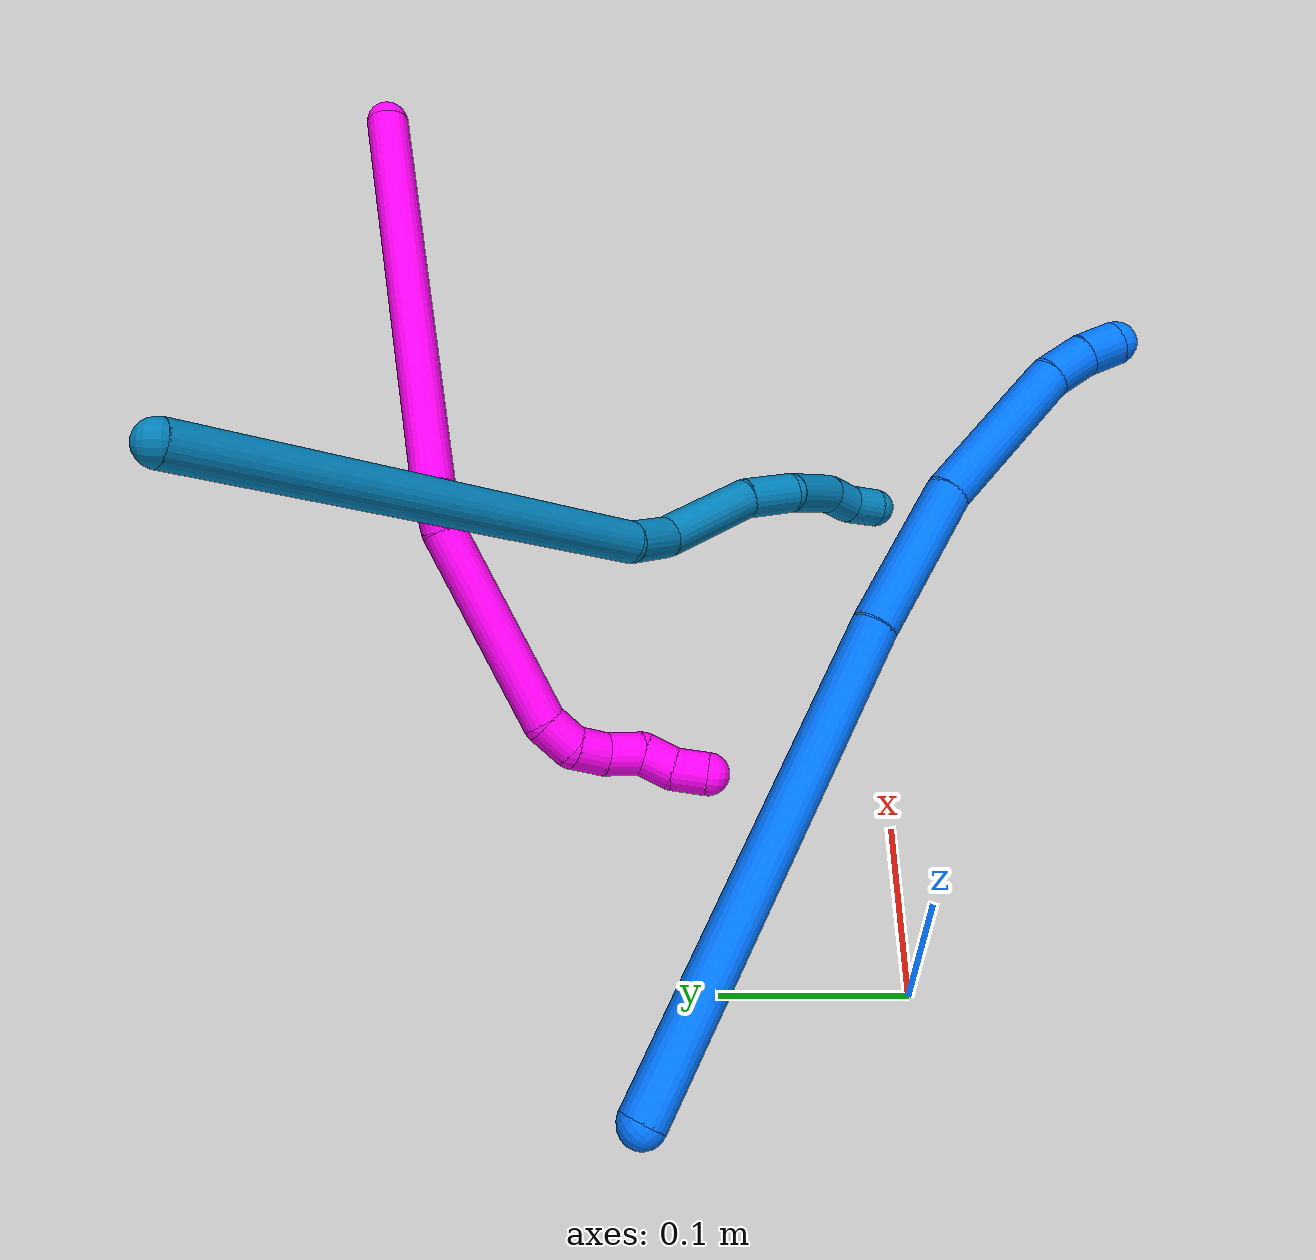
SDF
<sdf version="1.7">
 <world name="default">
  <model name="photoneo_s_sensor">
   <static>1</static>
   <pose>0 0 2 1.57079 1.57079 3.14159</pose>
   <link name="link">
    <inertial><mass>0.1</mass></inertial>
    <sensor name="sensor" type="depth">
     <update_rate>30</update_rate>
     <camera>
      <horizontal_fov>1.22</horizontal_fov>
      <image><width>1920</width><height>1200</height><format>B8G8R8</format></image>
      <clip><near>0.1</near><far>4</far></clip>
      <depth_camera><output>points</output></depth_camera>
     </camera>
     <plugin name="camera_plugin" filename="libgazebo_ros_depth_camera.so">
      <baseline>0.2</baseline>
      <alwaysOn>1</alwaysOn>
      <updateRate>0.0</updateRate>
      <cameraName>camera_ir</cameraName>
      <imageTopicName>/camera/color/image_raw</imageTopicName>
      <cameraInfoTopicName>/camera/color/camera_info</cameraInfoTopicName>
      <depthImageTopicName>/camera/depth/image_raw</depthImageTopicName>
      <depthImageCameraInfoTopicName>/camera/depth/camera_info</depthImageCameraInfoTopicName>
      <pointCloudTopicName>/camera/depth/points</pointCloudTopicName>
      <frameName>fr_optical</frameName>
      <pointCloudCutoff>0.1</pointCloudCutoff>
      <pointCloudCutoffMax>2.0</pointCloudCutoffMax>
      <distortionK1>0</distortionK1>
      <distortionK2>0</distortionK2>
      <distortionK3>0</distortionK3>
      <distortionT1>0</distortionT1>
      <distortionT2>0</distortionT2>
      <CxPrime>0</CxPrime>
      <Cx>0</Cx>
      <Cy>0</Cy>
      <focalLength>0</focalLength>
      <hackBaseline>0</hackBaseline>
     </plugin>
    </sensor>
   </link>
  </model>
  <model name="bin">
   <static>1</static>
   <link name="bottom">
    <collision name="collision-bottom">
     <pose>0 0 -0.01 0 -0 0</pose>
     <geometry><box><size>0.8 0.6 0.02</size></box></geometry>
     <surface>
      <friction><ode><mu>100</mu><mu2>100</mu2></ode></friction>
      <contact><collide_bitmask>65535</collide_bitmask></contact>
     </surface>
    </collision>
   </link>
   <link name="west_wall">
    <collision name="collision-west_wall">
     <pose>-0.41 0 0.1 0 -0 0</pose>
     <geometry><box><size>0.02 0.6 0.2</size></box></geometry>
     <surface>
      <friction><ode><mu>100</mu><mu2>100</mu2></ode></friction>
      <contact><collide_bitmask>65535</collide_bitmask></contact>
     </surface>
    </collision>
   </link>
   <link name="east_wall">
    <collision name="collision-east_wall">
     <pose>0.41 0 0.1 0 -0 0</pose>
     <geometry><box><size>0.02 0.6 0.2</size></box></geometry>
     <surface>
      <friction><ode><mu>100</mu><mu2>100</mu2></ode></friction>
      <contact><collide_bitmask>65535</collide_bitmask></contact>
     </surface>
    </collision>
   </link>
   <link name="south_wall">
    <collision name="collision-south_wall">
     <pose>0 -0.31 0.1 0 -0 0</pose>
     <geometry><box><size>0.8 0.02 0.2</size></box></geometry>
     <surface>
      <friction><ode><mu>100</mu><mu2>100</mu2></ode></friction>
      <contact><collide_bitmask>65535</collide_bitmask></contact>
     </surface>
    </collision>
   </link>
   <link name="north_wall">
    <collision name="collision-north_wall">
     <pose>0 0.31 0.1 0 -0 0</pose>
     <geometry><box><size>0.8 0.02 0.2</size></box></geometry>
     <surface>
      <friction><ode><mu>100</mu><mu2>100</mu2></ode></friction>
      <contact><collide_bitmask>65535</collide_bitmask></contact>
     </surface>
    </collision>
   </link>
  </model>
  <model name="9">
   <static>0</static>
   <link name="9">
    <collision name="collision-cylinder-e_1_1_4">
     <pose>0.073939 -0.028355 -0.116179 2.90221 0.553751 2.34087</pose>
     <geometry><cylinder><radius>0.0125</radius><length>0.281202</length></cylinder></geometry>
     <surface>
      <friction><ode><mu>1.16</mu><mu2>1.16</mu2><slip1>0</slip1><slip2>0</slip2></ode></friction>
      <contact><ode><kp>1e+06</kp><kd>1</kd><max_vel>0</max_vel><min_depth>0.001</min_depth></ode></contact>
     </surface>
    </collision>
    <visual name="visual-cylinder-e_1_1_4">
     <pose>0.073939 -0.028355 -0.116179 2.90221 0.553751 2.34087</pose>
     <geometry><cylinder><radius>0.0125</radius><length>0.281202</length></cylinder></geometry>
     <material><ambient>0 0.490196 0.709804 1</ambient></material>
    </visual>
    <collision name="collision-cylinder-e_2_4_5">
     <pose>0.155662 -0.064796 -0.244338 2.54789 0.493961 1.3787</pose>
     <geometry><cylinder><radius>0.0125</radius><length>0.03283</length></cylinder></geometry>
     <surface>
      <friction><ode><mu>1.16</mu><mu2>1.16</mu2><slip1>0</slip1><slip2>0</slip2></ode></friction>
      <contact><ode><kp>1e+06</kp><kd>1</kd><max_vel>0</max_vel><min_depth>0.001</min_depth></ode></contact>
     </surface>
    </collision>
    <visual name="visual-cylinder-e_2_4_5">
     <pose>0.155662 -0.064796 -0.244338 2.54789 0.493961 1.3787</pose>
     <geometry><cylinder><radius>0.0125</radius><length>0.03283</length></cylinder></geometry>
     <material><ambient>0 0.490196 0.709804 1</ambient></material>
    </visual>
    <collision name="collision-cylinder-e_3_5_6">
     <pose>0.164992 -0.089295 -0.283132 2.59232 0.049187 0.174167</pose>
     <geometry><cylinder><radius>0.0125</radius><length>0.062955</length></cylinder></geometry>
     <surface>
      <friction><ode><mu>1.16</mu><mu2>1.16</mu2><slip1>0</slip1><slip2>0</slip2></ode></friction>
      <contact><ode><kp>1e+06</kp><kd>1</kd><max_vel>0</max_vel><min_depth>0.001</min_depth></ode></contact>
     </surface>
    </collision>
    <visual name="visual-cylinder-e_3_5_6">
     <pose>0.164992 -0.089295 -0.283132 2.59232 0.049187 0.174167</pose>
     <geometry><cylinder><radius>0.0125</radius><length>0.062955</length></cylinder></geometry>
     <material><ambient>0 0.490196 0.709804 1</ambient></material>
    </visual>
    <collision name="collision-cylinder-e_4_6_7">
     <pose>0.169682 -0.110576 -0.325578 2.83972 0.189602 1.11747</pose>
     <geometry><cylinder><radius>0.0125</radius><length>0.033341</length></cylinder></geometry>
     <surface>
      <friction><ode><mu>1.16</mu><mu2>1.16</mu2><slip1>0</slip1><slip2>0</slip2></ode></friction>
      <contact><ode><kp>1e+06</kp><kd>1</kd><max_vel>0</max_vel><min_depth>0.001</min_depth></ode></contact>
     </surface>
    </collision>
    <visual name="visual-cylinder-e_4_6_7">
     <pose>0.169682 -0.110576 -0.325578 2.83972 0.189602 1.11747</pose>
     <geometry><cylinder><radius>0.0125</radius><length>0.033341</length></cylinder></geometry>
     <material><ambient>0 0.490196 0.709804 1</ambient></material>
    </visual>
    <collision name="collision-cylinder-e_5_7_8">
     <pose>0.184897 -0.125279 -0.357242 2.59134 0.570703 1.60926</pose>
     <geometry><cylinder><radius>0.0125</radius><length>0.044699</length></cylinder></geometry>
     <surface>
      <friction><ode><mu>1.16</mu><mu2>1.16</mu2><slip1>0</slip1><slip2>0</slip2></ode></friction>
      <contact><ode><kp>1e+06</kp><kd>1</kd><max_vel>0</max_vel><min_depth>0.001</min_depth></ode></contact>
     </surface>
    </collision>
    <visual name="visual-cylinder-e_5_7_8">
     <pose>0.184897 -0.125279 -0.357242 2.59134 0.570703 1.60926</pose>
     <geometry><cylinder><radius>0.0125</radius><length>0.044699</length></cylinder></geometry>
     <material><ambient>0 0.490196 0.709804 1</ambient></material>
    </visual>
    <collision name="collision-cylinder-e_6_8_9">
     <pose>0.204155 -0.136675 -0.382082 2.96616 0.676555 2.65168</pose>
     <geometry><cylinder><radius>0.0125</radius><length>0.022946</length></cylinder></geometry>
     <surface>
      <friction><ode><mu>1.16</mu><mu2>1.16</mu2><slip1>0</slip1><slip2>0</slip2></ode></friction>
      <contact><ode><kp>1e+06</kp><kd>1</kd><max_vel>0</max_vel><min_depth>0.001</min_depth></ode></contact>
     </surface>
    </collision>
    <visual name="visual-cylinder-e_6_8_9">
     <pose>0.204155 -0.136675 -0.382082 2.96616 0.676555 2.65168</pose>
     <geometry><cylinder><radius>0.0125</radius><length>0.022946</length></cylinder></geometry>
     <material><ambient>0 0.490196 0.709804 1</ambient></material>
    </visual>
    <collision name="collision-cylinder-e_7_9_2">
     <pose>0.215207 -0.139712 -0.401095 2.99796 0.358978 2.38663</pose>
     <geometry><cylinder><radius>0.0125</radius><length>0.022026</length></cylinder></geometry>
     <surface>
      <friction><ode><mu>1.16</mu><mu2>1.16</mu2><slip1>0</slip1><slip2>0</slip2></ode></friction>
      <contact><ode><kp>1e+06</kp><kd>1</kd><max_vel>0</max_vel><min_depth>0.001</min_depth></ode></contact>
     </surface>
    </collision>
    <visual name="visual-cylinder-e_7_9_2">
     <pose>0.215207 -0.139712 -0.401095 2.99796 0.358978 2.38663</pose>
     <geometry><cylinder><radius>0.0125</radius><length>0.022026</length></cylinder></geometry>
     <material><ambient>0 0.490196 0.709804 1</ambient></material>
    </visual>
    <collision name="collision-sphere-2">
     <pose>0.219076 -0.141188 -0.4113 0 -0 0</pose>
     <geometry><sphere><radius>0.0125</radius></sphere></geometry>
     <surface>
      <friction><ode><mu>1.16</mu><mu2>1.16</mu2><slip1>0</slip1><slip2>0</slip2></ode></friction>
      <contact><ode><kp>1e+06</kp><kd>1</kd><max_vel>0</max_vel><min_depth>0.001</min_depth></ode></contact>
     </surface>
    </collision>
    <visual name="visual-sphere-2">
     <pose>0.219076 -0.141188 -0.4113 0 -0 0</pose>
     <geometry><sphere><radius>0.0125</radius></sphere></geometry>
     <material><ambient>0 0.490196 0.709804 1</ambient></material>
    </visual>
    <collision name="collision-sphere-9">
     <pose>0.211338 -0.138236 -0.39089 0 -0 0</pose>
     <geometry><sphere><radius>0.0125</radius></sphere></geometry>
     <surface>
      <friction><ode><mu>1.16</mu><mu2>1.16</mu2><slip1>0</slip1><slip2>0</slip2></ode></friction>
      <contact><ode><kp>1e+06</kp><kd>1</kd><max_vel>0</max_vel><min_depth>0.001</min_depth></ode></contact>
     </surface>
    </collision>
    <visual name="visual-sphere-9">
     <pose>0.211338 -0.138236 -0.39089 0 -0 0</pose>
     <geometry><sphere><radius>0.0125</radius></sphere></geometry>
     <material><ambient>0 0.490196 0.709804 1</ambient></material>
    </visual>
    <collision name="collision-sphere-4">
     <pose>0.147879 -0.056711 -0.232358 0 -0 0</pose>
     <geometry><sphere><radius>0.0125</radius></sphere></geometry>
     <surface>
      <friction><ode><mu>1.16</mu><mu2>1.16</mu2><slip1>0</slip1><slip2>0</slip2></ode></friction>
      <contact><ode><kp>1e+06</kp><kd>1</kd><max_vel>0</max_vel><min_depth>0.001</min_depth></ode></contact>
     </surface>
    </collision>
    <visual name="visual-sphere-4">
     <pose>0.147879 -0.056711 -0.232358 0 -0 0</pose>
     <geometry><sphere><radius>0.0125</radius></sphere></geometry>
     <material><ambient>0 0.490196 0.709804 1</ambient></material>
    </visual>
    <collision name="collision-sphere-1">
     <geometry><sphere><radius>0.0125</radius></sphere></geometry>
     <surface>
      <friction><ode><mu>1.16</mu><mu2>1.16</mu2><slip1>0</slip1><slip2>0</slip2></ode></friction>
      <contact><ode><kp>1e+06</kp><kd>1</kd><max_vel>0</max_vel><min_depth>0.001</min_depth></ode></contact>
     </surface>
    </collision>
    <visual name="visual-sphere-1">
     <geometry><sphere><radius>0.0125</radius></sphere></geometry>
     <material><ambient>0 0.490196 0.709804 1</ambient></material>
    </visual>
    <collision name="collision-sphere-8">
     <pose>0.196971 -0.135113 -0.373273 0 -0 0</pose>
     <geometry><sphere><radius>0.0125</radius></sphere></geometry>
     <surface>
      <friction><ode><mu>1.16</mu><mu2>1.16</mu2><slip1>0</slip1><slip2>0</slip2></ode></friction>
      <contact><ode><kp>1e+06</kp><kd>1</kd><max_vel>0</max_vel><min_depth>0.001</min_depth></ode></contact>
     </surface>
    </collision>
    <visual name="visual-sphere-8">
     <pose>0.196971 -0.135113 -0.373273 0 -0 0</pose>
     <geometry><sphere><radius>0.0125</radius></sphere></geometry>
     <material><ambient>0 0.490196 0.709804 1</ambient></material>
    </visual>
    <collision name="collision-sphere-5">
     <pose>0.163444 -0.072882 -0.256317 0 -0 0</pose>
     <geometry><sphere><radius>0.0125</radius></sphere></geometry>
     <surface>
      <friction><ode><mu>1.16</mu><mu2>1.16</mu2><slip1>0</slip1><slip2>0</slip2></ode></friction>
      <contact><ode><kp>1e+06</kp><kd>1</kd><max_vel>0</max_vel><min_depth>0.001</min_depth></ode></contact>
     </surface>
    </collision>
    <visual name="visual-sphere-5">
     <pose>0.163444 -0.072882 -0.256317 0 -0 0</pose>
     <geometry><sphere><radius>0.0125</radius></sphere></geometry>
     <material><ambient>0 0.490196 0.709804 1</ambient></material>
    </visual>
    <collision name="collision-sphere-6">
     <pose>0.16654 -0.105709 -0.309947 0 -0 0</pose>
     <geometry><sphere><radius>0.0125</radius></sphere></geometry>
     <surface>
      <friction><ode><mu>1.16</mu><mu2>1.16</mu2><slip1>0</slip1><slip2>0</slip2></ode></friction>
      <contact><ode><kp>1e+06</kp><kd>1</kd><max_vel>0</max_vel><min_depth>0.001</min_depth></ode></contact>
     </surface>
    </collision>
    <visual name="visual-sphere-6">
     <pose>0.16654 -0.105709 -0.309947 0 -0 0</pose>
     <geometry><sphere><radius>0.0125</radius></sphere></geometry>
     <material><ambient>0 0.490196 0.709804 1</ambient></material>
    </visual>
    <collision name="collision-sphere-7">
     <pose>0.172823 -0.115444 -0.34121 0 -0 0</pose>
     <geometry><sphere><radius>0.0125</radius></sphere></geometry>
     <surface>
      <friction><ode><mu>1.16</mu><mu2>1.16</mu2><slip1>0</slip1><slip2>0</slip2></ode></friction>
      <contact><ode><kp>1e+06</kp><kd>1</kd><max_vel>0</max_vel><min_depth>0.001</min_depth></ode></contact>
     </surface>
    </collision>
    <visual name="visual-sphere-7">
     <pose>0.172823 -0.115444 -0.34121 0 -0 0</pose>
     <geometry><sphere><radius>0.0125</radius></sphere></geometry>
     <material><ambient>0 0.490196 0.709804 1</ambient></material>
    </visual>
    <inertial>
     <pose>0.119273 -0.062445 -0.205883 0 -0 0</pose>
     <mass>0.5</mass>
     <inertia>
      <ixx>9.5e-05</ixx>
      <ixy>0</ixy>
      <ixz>0</ixz>
      <iyy>0.002561</iyy>
      <iyz>0</iyz>
      <izz>-0.000627</izz>
     </inertia>
    </inertial>
   </link>
   <pose>0.145454 0.358777 0.261483 -0.600686 1.45172 1.07958</pose>
  </model>
  <model name="10">
   <static>0</static>
   <link name="10">
    <collision name="collision-cylinder-e_1_1_4">
     <pose>-0.043579 0.041507 -0.107413 -2.77285 -0.361788 1.55132</pose>
     <geometry><cylinder><radius>0.0125</radius><length>0.246249</length></cylinder></geometry>
     <surface>
      <friction><ode><mu>1.16</mu><mu2>1.16</mu2><slip1>0</slip1><slip2>0</slip2></ode></friction>
      <contact><ode><kp>1e+06</kp><kd>1</kd><max_vel>0</max_vel><min_depth>0.001</min_depth></ode></contact>
     </surface>
    </collision>
    <visual name="visual-cylinder-e_1_1_4">
     <pose>-0.043579 0.041507 -0.107413 -2.77285 -0.361788 1.55132</pose>
     <geometry><cylinder><radius>0.0125</radius><length>0.246249</length></cylinder></geometry>
     <material><ambient>1 0 0.964706 1</ambient></material>
    </visual>
    <collision name="collision-cylinder-e_2_4_5">
     <pose>-0.091904 0.082434 -0.226689 3.0928 -0.380127 -2.88927</pose>
     <geometry><cylinder><radius>0.0125</radius><length>0.025578</length></cylinder></geometry>
     <surface>
      <friction><ode><mu>1.16</mu><mu2>1.16</mu2><slip1>0</slip1><slip2>0</slip2></ode></friction>
      <contact><ode><kp>1e+06</kp><kd>1</kd><max_vel>0</max_vel><min_depth>0.001</min_depth></ode></contact>
     </surface>
    </collision>
    <visual name="visual-cylinder-e_2_4_5">
     <pose>-0.091904 0.082434 -0.226689 3.0928 -0.380127 -2.88927</pose>
     <geometry><cylinder><radius>0.0125</radius><length>0.025578</length></cylinder></geometry>
     <material><ambient>1 0 0.964706 1</ambient></material>
    </visual>
    <collision name="collision-cylinder-e_3_5_6">
     <pose>-0.13348 0.079789 -0.287341 3.09927 -0.646186 -3.01534</pose>
     <geometry><cylinder><radius>0.0125</radius><length>0.122331</length></cylinder></geometry>
     <surface>
      <friction><ode><mu>1.16</mu><mu2>1.16</mu2><slip1>0</slip1><slip2>0</slip2></ode></friction>
      <contact><ode><kp>1e+06</kp><kd>1</kd><max_vel>0</max_vel><min_depth>0.001</min_depth></ode></contact>
     </surface>
    </collision>
    <visual name="visual-cylinder-e_3_5_6">
     <pose>-0.13348 0.079789 -0.287341 3.09927 -0.646186 -3.01534</pose>
     <geometry><cylinder><radius>0.0125</radius><length>0.122331</length></cylinder></geometry>
     <material><ambient>1 0 0.964706 1</ambient></material>
    </visual>
    <collision name="collision-cylinder-e_4_6_7">
     <pose>-0.178981 0.075143 -0.34213 2.73549 -0.925232 -2.35854</pose>
     <geometry><cylinder><radius>0.0125</radius><length>0.02171</length></cylinder></geometry>
     <surface>
      <friction><ode><mu>1.16</mu><mu2>1.16</mu2><slip1>0</slip1><slip2>0</slip2></ode></friction>
      <contact><ode><kp>1e+06</kp><kd>1</kd><max_vel>0</max_vel><min_depth>0.001</min_depth></ode></contact>
     </surface>
    </collision>
    <visual name="visual-cylinder-e_4_6_7">
     <pose>-0.178981 0.075143 -0.34213 2.73549 -0.925232 -2.35854</pose>
     <geometry><cylinder><radius>0.0125</radius><length>0.02171</length></cylinder></geometry>
     <material><ambient>1 0 0.964706 1</ambient></material>
    </visual>
    <collision name="collision-cylinder-e_5_7_8">
     <pose>-0.19643 0.067021 -0.349563 1.82391 -0.992957 -1.22104</pose>
     <geometry><cylinder><radius>0.0125</radius><length>0.02096</length></cylinder></geometry>
     <surface>
      <friction><ode><mu>1.16</mu><mu2>1.16</mu2><slip1>0</slip1><slip2>0</slip2></ode></friction>
      <contact><ode><kp>1e+06</kp><kd>1</kd><max_vel>0</max_vel><min_depth>0.001</min_depth></ode></contact>
     </surface>
    </collision>
    <visual name="visual-cylinder-e_5_7_8">
     <pose>-0.19643 0.067021 -0.349563 1.82391 -0.992957 -1.22104</pose>
     <geometry><cylinder><radius>0.0125</radius><length>0.02096</length></cylinder></geometry>
     <material><ambient>1 0 0.964706 1</ambient></material>
    </visual>
    <collision name="collision-cylinder-e_6_8_9">
     <pose>-0.215439 0.057568 -0.34955 1.2166 -1.1838 -0.875755</pose>
     <geometry><cylinder><radius>0.0125</radius><length>0.022096</length></cylinder></geometry>
     <surface>
      <friction><ode><mu>1.16</mu><mu2>1.16</mu2><slip1>0</slip1><slip2>0</slip2></ode></friction>
      <contact><ode><kp>1e+06</kp><kd>1</kd><max_vel>0</max_vel><min_depth>0.001</min_depth></ode></contact>
     </surface>
    </collision>
    <visual name="visual-cylinder-e_6_8_9">
     <pose>-0.215439 0.057568 -0.34955 1.2166 -1.1838 -0.875755</pose>
     <geometry><cylinder><radius>0.0125</radius><length>0.022096</length></cylinder></geometry>
     <material><ambient>1 0 0.964706 1</ambient></material>
    </visual>
    <collision name="collision-cylinder-e_7_9_10">
     <pose>-0.235344 0.052832 -0.351111 2.8736 -1.25895 -2.77555</pose>
     <geometry><cylinder><radius>0.0125</radius><length>0.020328</length></cylinder></geometry>
     <surface>
      <friction><ode><mu>1.16</mu><mu2>1.16</mu2><slip1>0</slip1><slip2>0</slip2></ode></friction>
      <contact><ode><kp>1e+06</kp><kd>1</kd><max_vel>0</max_vel><min_depth>0.001</min_depth></ode></contact>
     </surface>
    </collision>
    <visual name="visual-cylinder-e_7_9_10">
     <pose>-0.235344 0.052832 -0.351111 2.8736 -1.25895 -2.77555</pose>
     <geometry><cylinder><radius>0.0125</radius><length>0.020328</length></cylinder></geometry>
     <material><ambient>1 0 0.964706 1</ambient></material>
    </visual>
    <collision name="collision-cylinder-e_8_10_2">
     <pose>-0.255384 0.051876 -0.353737 0.328756 -1.53189 -0.316421</pose>
     <geometry><cylinder><radius>0.0125</radius><length>0.020749</length></cylinder></geometry>
     <surface>
      <friction><ode><mu>1.16</mu><mu2>1.16</mu2><slip1>0</slip1><slip2>0</slip2></ode></friction>
      <contact><ode><kp>1e+06</kp><kd>1</kd><max_vel>0</max_vel><min_depth>0.001</min_depth></ode></contact>
     </surface>
    </collision>
    <visual name="visual-cylinder-e_8_10_2">
     <pose>-0.255384 0.051876 -0.353737 0.328756 -1.53189 -0.316421</pose>
     <geometry><cylinder><radius>0.0125</radius><length>0.020749</length></cylinder></geometry>
     <material><ambient>1 0 0.964706 1</ambient></material>
    </visual>
    <collision name="collision-sphere-2">
     <pose>-0.265751 0.051745 -0.353355 0 -0 0</pose>
     <geometry><sphere><radius>0.0125</radius></sphere></geometry>
     <surface>
      <friction><ode><mu>1.16</mu><mu2>1.16</mu2><slip1>0</slip1><slip2>0</slip2></ode></friction>
      <contact><ode><kp>1e+06</kp><kd>1</kd><max_vel>0</max_vel><min_depth>0.001</min_depth></ode></contact>
     </surface>
    </collision>
    <visual name="visual-sphere-2">
     <pose>-0.265751 0.051745 -0.353355 0 -0 0</pose>
     <geometry><sphere><radius>0.0125</radius></sphere></geometry>
     <material><ambient>1 0 0.964706 1</ambient></material>
    </visual>
    <collision name="collision-sphere-10">
     <pose>-0.245018 0.052006 -0.354119 0 -0 0</pose>
     <geometry><sphere><radius>0.0125</radius></sphere></geometry>
     <surface>
      <friction><ode><mu>1.16</mu><mu2>1.16</mu2><slip1>0</slip1><slip2>0</slip2></ode></friction>
      <contact><ode><kp>1e+06</kp><kd>1</kd><max_vel>0</max_vel><min_depth>0.001</min_depth></ode></contact>
     </surface>
    </collision>
    <visual name="visual-sphere-10">
     <pose>-0.245018 0.052006 -0.354119 0 -0 0</pose>
     <geometry><sphere><radius>0.0125</radius></sphere></geometry>
     <material><ambient>1 0 0.964706 1</ambient></material>
    </visual>
    <collision name="collision-sphere-9">
     <pose>-0.22567 0.053658 -0.348104 0 -0 0</pose>
     <geometry><sphere><radius>0.0125</radius></sphere></geometry>
     <surface>
      <friction><ode><mu>1.16</mu><mu2>1.16</mu2><slip1>0</slip1><slip2>0</slip2></ode></friction>
      <contact><ode><kp>1e+06</kp><kd>1</kd><max_vel>0</max_vel><min_depth>0.001</min_depth></ode></contact>
     </surface>
    </collision>
    <visual name="visual-sphere-9">
     <pose>-0.22567 0.053658 -0.348104 0 -0 0</pose>
     <geometry><sphere><radius>0.0125</radius></sphere></geometry>
     <material><ambient>1 0 0.964706 1</ambient></material>
    </visual>
    <collision name="collision-sphere-4">
     <pose>-0.087159 0.083013 -0.214827 0 -0 0</pose>
     <geometry><sphere><radius>0.0125</radius></sphere></geometry>
     <surface>
      <friction><ode><mu>1.16</mu><mu2>1.16</mu2><slip1>0</slip1><slip2>0</slip2></ode></friction>
      <contact><ode><kp>1e+06</kp><kd>1</kd><max_vel>0</max_vel><min_depth>0.001</min_depth></ode></contact>
     </surface>
    </collision>
    <visual name="visual-sphere-4">
     <pose>-0.087159 0.083013 -0.214827 0 -0 0</pose>
     <geometry><sphere><radius>0.0125</radius></sphere></geometry>
     <material><ambient>1 0 0.964706 1</ambient></material>
    </visual>
    <collision name="collision-sphere-1">
     <geometry><sphere><radius>0.0125</radius></sphere></geometry>
     <surface>
      <friction><ode><mu>1.16</mu><mu2>1.16</mu2><slip1>0</slip1><slip2>0</slip2></ode></friction>
      <contact><ode><kp>1e+06</kp><kd>1</kd><max_vel>0</max_vel><min_depth>0.001</min_depth></ode></contact>
     </surface>
    </collision>
    <visual name="visual-sphere-1">
     <geometry><sphere><radius>0.0125</radius></sphere></geometry>
     <material><ambient>1 0 0.964706 1</ambient></material>
    </visual>
    <collision name="collision-sphere-8">
     <pose>-0.205208 0.061479 -0.350997 0 -0 0</pose>
     <geometry><sphere><radius>0.0125</radius></sphere></geometry>
     <surface>
      <friction><ode><mu>1.16</mu><mu2>1.16</mu2><slip1>0</slip1><slip2>0</slip2></ode></friction>
      <contact><ode><kp>1e+06</kp><kd>1</kd><max_vel>0</max_vel><min_depth>0.001</min_depth></ode></contact>
     </surface>
    </collision>
    <visual name="visual-sphere-8">
     <pose>-0.205208 0.061479 -0.350997 0 -0 0</pose>
     <geometry><sphere><radius>0.0125</radius></sphere></geometry>
     <material><ambient>1 0 0.964706 1</ambient></material>
    </visual>
    <collision name="collision-sphere-5">
     <pose>-0.096649 0.081855 -0.238551 0 -0 0</pose>
     <geometry><sphere><radius>0.0125</radius></sphere></geometry>
     <surface>
      <friction><ode><mu>1.16</mu><mu2>1.16</mu2><slip1>0</slip1><slip2>0</slip2></ode></friction>
      <contact><ode><kp>1e+06</kp><kd>1</kd><max_vel>0</max_vel><min_depth>0.001</min_depth></ode></contact>
     </surface>
    </collision>
    <visual name="visual-sphere-5">
     <pose>-0.096649 0.081855 -0.238551 0 -0 0</pose>
     <geometry><sphere><radius>0.0125</radius></sphere></geometry>
     <material><ambient>1 0 0.964706 1</ambient></material>
    </visual>
    <collision name="collision-sphere-6">
     <pose>-0.17031 0.077723 -0.33613 0 -0 0</pose>
     <geometry><sphere><radius>0.0125</radius></sphere></geometry>
     <surface>
      <friction><ode><mu>1.16</mu><mu2>1.16</mu2><slip1>0</slip1><slip2>0</slip2></ode></friction>
      <contact><ode><kp>1e+06</kp><kd>1</kd><max_vel>0</max_vel><min_depth>0.001</min_depth></ode></contact>
     </surface>
    </collision>
    <visual name="visual-sphere-6">
     <pose>-0.17031 0.077723 -0.33613 0 -0 0</pose>
     <geometry><sphere><radius>0.0125</radius></sphere></geometry>
     <material><ambient>1 0 0.964706 1</ambient></material>
    </visual>
    <collision name="collision-sphere-7">
     <pose>-0.187651 0.072563 -0.34813 0 -0 0</pose>
     <geometry><sphere><radius>0.0125</radius></sphere></geometry>
     <surface>
      <friction><ode><mu>1.16</mu><mu2>1.16</mu2><slip1>0</slip1><slip2>0</slip2></ode></friction>
      <contact><ode><kp>1e+06</kp><kd>1</kd><max_vel>0</max_vel><min_depth>0.001</min_depth></ode></contact>
     </surface>
    </collision>
    <visual name="visual-sphere-7">
     <pose>-0.187651 0.072563 -0.34813 0 -0 0</pose>
     <geometry><sphere><radius>0.0125</radius></sphere></geometry>
     <material><ambient>1 0 0.964706 1</ambient></material>
    </visual>
    <inertial>
     <pose>-0.104514 0.057097 -0.208709 0 -0 0</pose>
     <mass>0.5</mass>
     <inertia>
      <ixx>0.001029</ixx>
      <ixy>0</ixy>
      <ixz>0</ixz>
      <iyy>0.001461</iyy>
      <iyz>0</iyz>
      <izz>0.000104</izz>
     </inertia>
    </inertial>
   </link>
   <pose>0.458457 0.303589 0.237351 0.798773 -0.05288 1.39179</pose>
  </model>
  <model name="14">
   <static>0</static>
   <link name="14">
    <collision name="collision-cylinder-e_1_1_4">
     <pose>0.107701 -0.051622 -0.059042 2.42314 0.941397 1.87006</pose>
     <geometry><cylinder><radius>0.0125</radius><length>0.266461</length></cylinder></geometry>
     <surface>
      <friction><ode><mu>1.16</mu><mu2>1.16</mu2><slip1>0</slip1><slip2>0</slip2></ode></friction>
      <contact><ode><kp>1e+06</kp><kd>1</kd><max_vel>0</max_vel><min_depth>0.001</min_depth></ode></contact>
     </surface>
    </collision>
    <visual name="visual-cylinder-e_1_1_4">
     <pose>0.107701 -0.051622 -0.059042 2.42314 0.941397 1.87006</pose>
     <geometry><cylinder><radius>0.0125</radius><length>0.266461</length></cylinder></geometry>
     <material><ambient>0 0.462745 1 1</ambient></material>
    </visual>
    <collision name="collision-cylinder-e_2_4_5">
     <pose>0.250023 -0.124439 -0.136453 2.28487 0.889923 1.6141</pose>
     <geometry><cylinder><radius>0.0125</radius><length>0.08911</length></cylinder></geometry>
     <surface>
      <friction><ode><mu>1.16</mu><mu2>1.16</mu2><slip1>0</slip1><slip2>0</slip2></ode></friction>
      <contact><ode><kp>1e+06</kp><kd>1</kd><max_vel>0</max_vel><min_depth>0.001</min_depth></ode></contact>
     </surface>
    </collision>
    <visual name="visual-cylinder-e_2_4_5">
     <pose>0.250023 -0.124439 -0.136453 2.28487 0.889923 1.6141</pose>
     <geometry><cylinder><radius>0.0125</radius><length>0.08911</length></cylinder></geometry>
     <material><ambient>0 0.462745 1 1</ambient></material>
    </visual>
    <collision name="collision-cylinder-e_3_5_6">
     <pose>0.323563 -0.172123 -0.166236 1.97769 0.932994 1.3065</pose>
     <geometry><cylinder><radius>0.0125</radius><length>0.096887</length></cylinder></geometry>
     <surface>
      <friction><ode><mu>1.16</mu><mu2>1.16</mu2><slip1>0</slip1><slip2>0</slip2></ode></friction>
      <contact><ode><kp>1e+06</kp><kd>1</kd><max_vel>0</max_vel><min_depth>0.001</min_depth></ode></contact>
     </surface>
    </collision>
    <visual name="visual-cylinder-e_3_5_6">
     <pose>0.323563 -0.172123 -0.166236 1.97769 0.932994 1.3065</pose>
     <geometry><cylinder><radius>0.0125</radius><length>0.096887</length></cylinder></geometry>
     <material><ambient>0 0.462745 1 1</ambient></material>
    </visual>
    <collision name="collision-cylinder-e_4_6_7">
     <pose>0.372533 -0.206963 -0.177958 1.60747 0.877231 0.905768</pose>
     <geometry><cylinder><radius>0.0125</radius><length>0.026141</length></cylinder></geometry>
     <surface>
      <friction><ode><mu>1.16</mu><mu2>1.16</mu2><slip1>0</slip1><slip2>0</slip2></ode></friction>
      <contact><ode><kp>1e+06</kp><kd>1</kd><max_vel>0</max_vel><min_depth>0.001</min_depth></ode></contact>
     </surface>
    </collision>
    <visual name="visual-cylinder-e_4_6_7">
     <pose>0.372533 -0.206963 -0.177958 1.60747 0.877231 0.905768</pose>
     <geometry><cylinder><radius>0.0125</radius><length>0.026141</length></cylinder></geometry>
     <material><ambient>0 0.462745 1 1</ambient></material>
    </visual>
    <collision name="collision-cylinder-e_5_7_2">
     <pose>0.390536 -0.222202 -0.176309 1.29418 0.837673 0.648989</pose>
     <geometry><cylinder><radius>0.0125</radius><length>0.021401</length></cylinder></geometry>
     <surface>
      <friction><ode><mu>1.16</mu><mu2>1.16</mu2><slip1>0</slip1><slip2>0</slip2></ode></friction>
      <contact><ode><kp>1e+06</kp><kd>1</kd><max_vel>0</max_vel><min_depth>0.001</min_depth></ode></contact>
     </surface>
    </collision>
    <visual name="visual-cylinder-e_5_7_2">
     <pose>0.390536 -0.222202 -0.176309 1.29418 0.837673 0.648989</pose>
     <geometry><cylinder><radius>0.0125</radius><length>0.021401</length></cylinder></geometry>
     <material><ambient>0 0.462745 1 1</ambient></material>
    </visual>
    <collision name="collision-sphere-2">
     <pose>0.398487 -0.22909 -0.174353 0 -0 0</pose>
     <geometry><sphere><radius>0.0125</radius></sphere></geometry>
     <surface>
      <friction><ode><mu>1.16</mu><mu2>1.16</mu2><slip1>0</slip1><slip2>0</slip2></ode></friction>
      <contact><ode><kp>1e+06</kp><kd>1</kd><max_vel>0</max_vel><min_depth>0.001</min_depth></ode></contact>
     </surface>
    </collision>
    <visual name="visual-sphere-2">
     <pose>0.398487 -0.22909 -0.174353 0 -0 0</pose>
     <geometry><sphere><radius>0.0125</radius></sphere></geometry>
     <material><ambient>0 0.462745 1 1</ambient></material>
    </visual>
    <collision name="collision-sphere-7">
     <pose>0.382584 -0.215313 -0.178265 0 -0 0</pose>
     <geometry><sphere><radius>0.0125</radius></sphere></geometry>
     <surface>
      <friction><ode><mu>1.16</mu><mu2>1.16</mu2><slip1>0</slip1><slip2>0</slip2></ode></friction>
      <contact><ode><kp>1e+06</kp><kd>1</kd><max_vel>0</max_vel><min_depth>0.001</min_depth></ode></contact>
     </surface>
    </collision>
    <visual name="visual-sphere-7">
     <pose>0.382584 -0.215313 -0.178265 0 -0 0</pose>
     <geometry><sphere><radius>0.0125</radius></sphere></geometry>
     <material><ambient>0 0.462745 1 1</ambient></material>
    </visual>
    <collision name="collision-sphere-6">
     <pose>0.362483 -0.198613 -0.177652 0 -0 0</pose>
     <geometry><sphere><radius>0.0125</radius></sphere></geometry>
     <surface>
      <friction><ode><mu>1.16</mu><mu2>1.16</mu2><slip1>0</slip1><slip2>0</slip2></ode></friction>
      <contact><ode><kp>1e+06</kp><kd>1</kd><max_vel>0</max_vel><min_depth>0.001</min_depth></ode></contact>
     </surface>
    </collision>
    <visual name="visual-sphere-6">
     <pose>0.362483 -0.198613 -0.177652 0 -0 0</pose>
     <geometry><sphere><radius>0.0125</radius></sphere></geometry>
     <material><ambient>0 0.462745 1 1</ambient></material>
    </visual>
    <collision name="collision-sphere-5">
     <pose>0.284643 -0.145634 -0.154821 0 -0 0</pose>
     <geometry><sphere><radius>0.0125</radius></sphere></geometry>
     <surface>
      <friction><ode><mu>1.16</mu><mu2>1.16</mu2><slip1>0</slip1><slip2>0</slip2></ode></friction>
      <contact><ode><kp>1e+06</kp><kd>1</kd><max_vel>0</max_vel><min_depth>0.001</min_depth></ode></contact>
     </surface>
    </collision>
    <visual name="visual-sphere-5">
     <pose>0.284643 -0.145634 -0.154821 0 -0 0</pose>
     <geometry><sphere><radius>0.0125</radius></sphere></geometry>
     <material><ambient>0 0.462745 1 1</ambient></material>
    </visual>
    <collision name="collision-sphere-1">
     <geometry><sphere><radius>0.0125</radius></sphere></geometry>
     <surface>
      <friction><ode><mu>1.16</mu><mu2>1.16</mu2><slip1>0</slip1><slip2>0</slip2></ode></friction>
      <contact><ode><kp>1e+06</kp><kd>1</kd><max_vel>0</max_vel><min_depth>0.001</min_depth></ode></contact>
     </surface>
    </collision>
    <visual name="visual-sphere-1">
     <geometry><sphere><radius>0.0125</radius></sphere></geometry>
     <material><ambient>0 0.462745 1 1</ambient></material>
    </visual>
    <collision name="collision-sphere-4">
     <pose>0.215402 -0.103245 -0.118085 0 -0 0</pose>
     <geometry><sphere><radius>0.0125</radius></sphere></geometry>
     <surface>
      <friction><ode><mu>1.16</mu><mu2>1.16</mu2><slip1>0</slip1><slip2>0</slip2></ode></friction>
      <contact><ode><kp>1e+06</kp><kd>1</kd><max_vel>0</max_vel><min_depth>0.001</min_depth></ode></contact>
     </surface>
    </collision>
    <visual name="visual-sphere-4">
     <pose>0.215402 -0.103245 -0.118085 0 -0 0</pose>
     <geometry><sphere><radius>0.0125</radius></sphere></geometry>
     <material><ambient>0 0.462745 1 1</ambient></material>
    </visual>
    <inertial>
     <pose>0.200846 -0.103372 -0.104846 0 -0 0</pose>
     <mass>0.5</mass>
     <inertia>
      <ixx>0.000748</ixx>
      <ixy>0</ixy>
      <ixz>0</ixz>
      <iyy>0.00221</iyy>
      <iyz>0</iyz>
      <izz>-0.000721</izz>
     </inertia>
    </inertial>
   </link>
   <pose>-0.082593 0.136993 0.046686 1.63179 -0.815847 -1.00662</pose>
  </model>
 </world>
</sdf>
